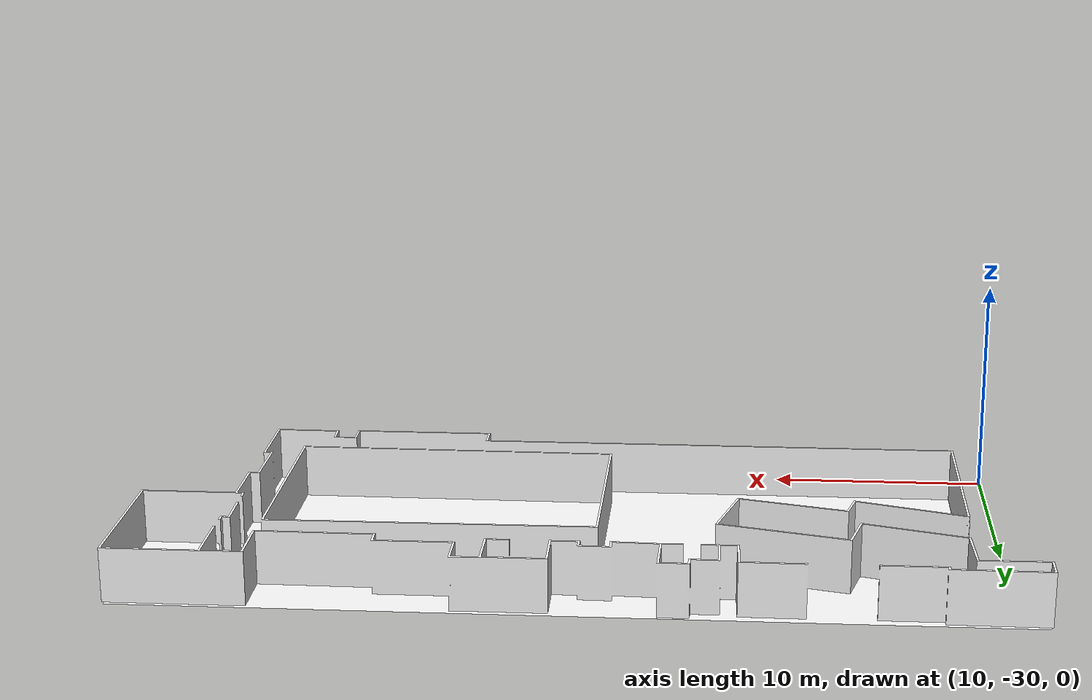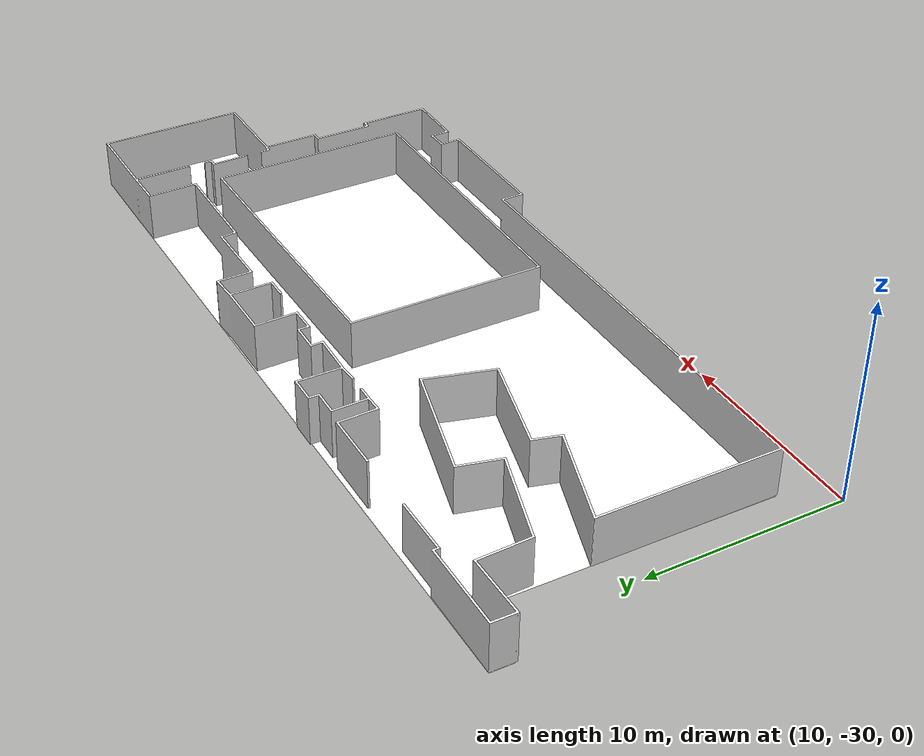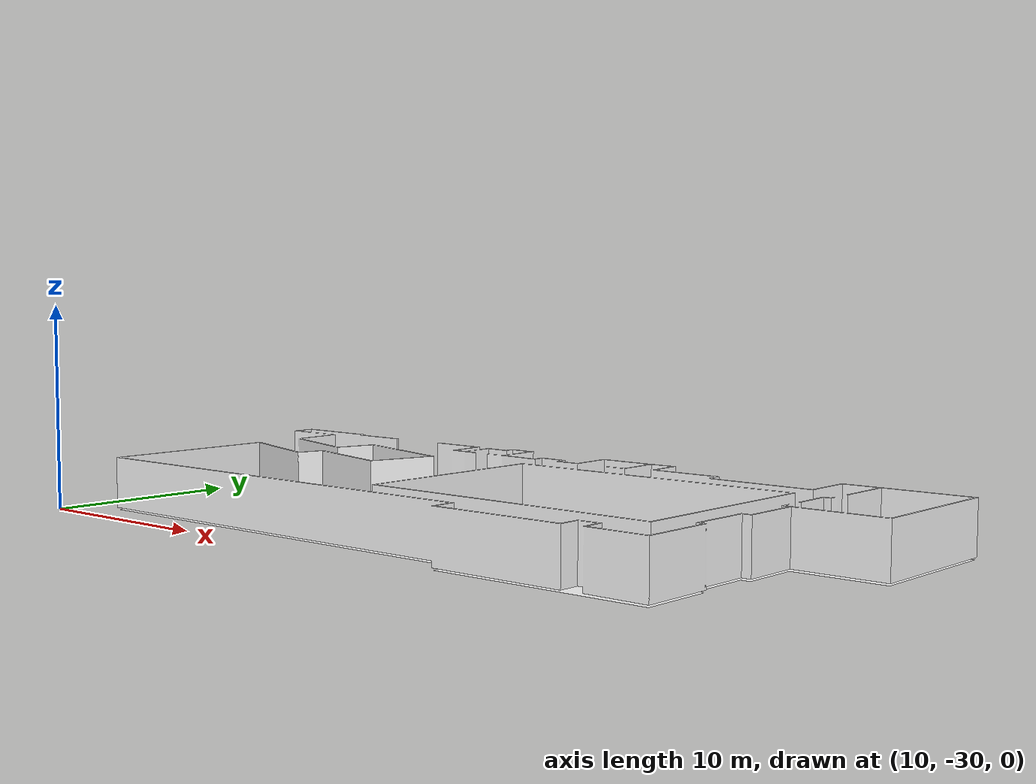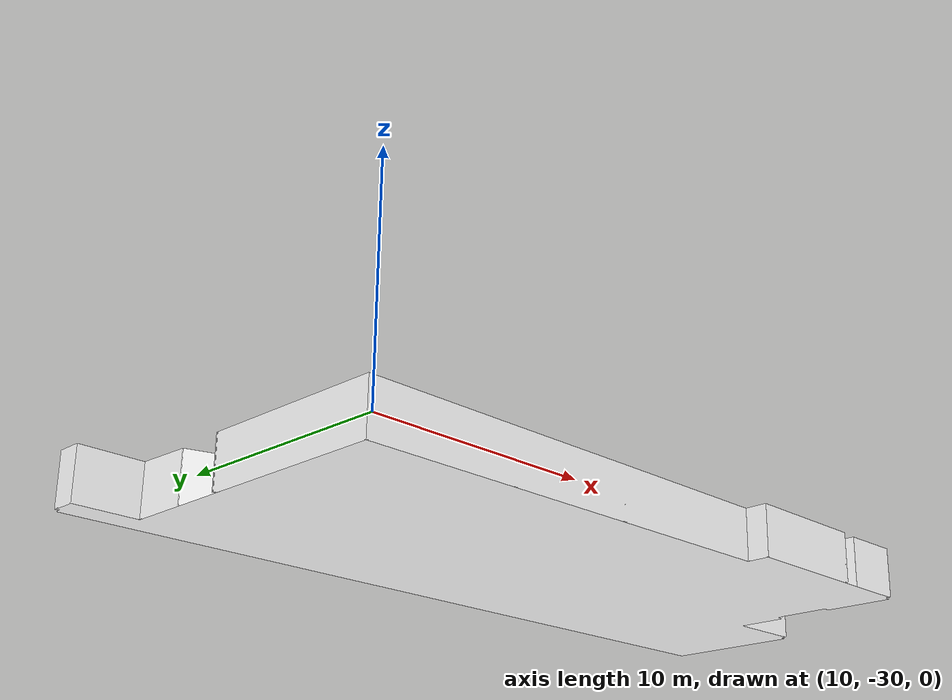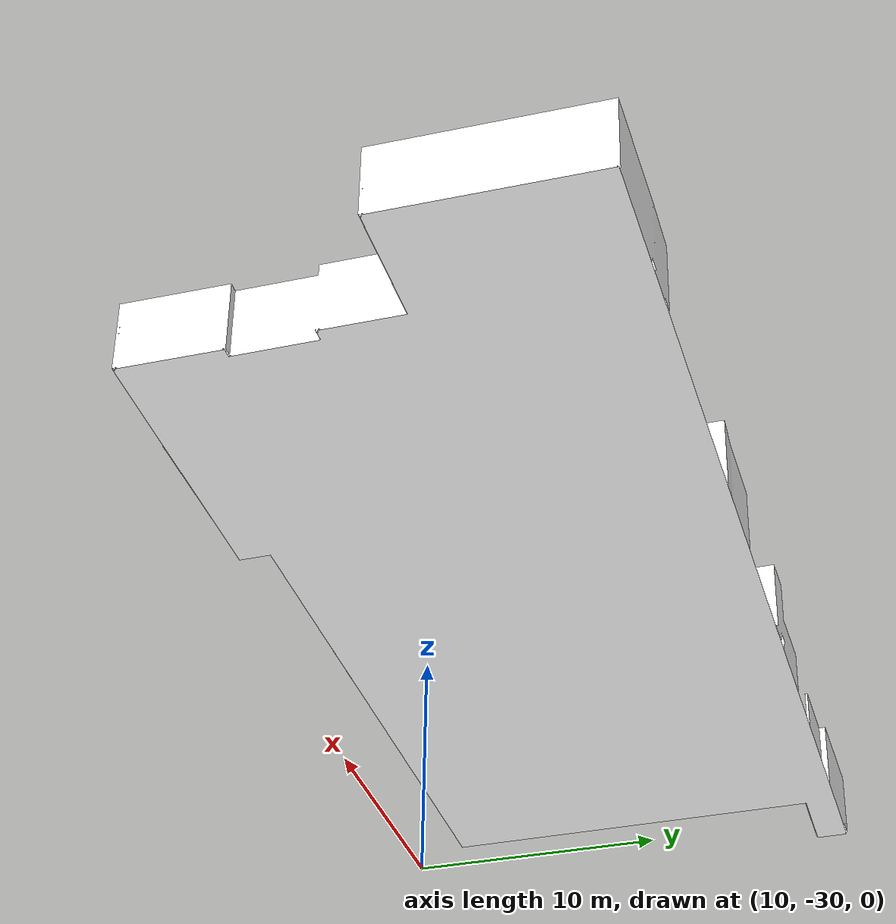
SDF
<?xml version='1.0' encoding='utf-8'?>
<sdf version="1.7">
  <model name="sam_mbc_mbc_lvl10">
    <static>true</static>
    <link name="floor_1">
      <visual name="visual">
        <geometry>
          <mesh>
            <uri>model://sam_mbc_mbc_lvl10/meshes/floor_1.obj</uri>
          </mesh>
        </geometry>
        <material>
          <diffuse>1.0 1.0 1.0</diffuse>
          <specular>0.1 0.1 0.1</specular>
          <pbr>
            <metal>
              <metalness>0.0</metalness>
              <albedo_map>model://sam_mbc_mbc_lvl10/meshes/blue_linoleum.png</albedo_map>
            </metal>
          </pbr>
          <script>
            <uri>model://sam_mbc_mbc_lvl10/meshes/</uri>
            <name>floor_1_Diffuse</name>
          </script>
        </material>
      </visual>
      <collision name="collision">
        <geometry>
          <mesh>
            <uri>model://sam_mbc_mbc_lvl10/meshes/floor_1.obj</uri>
          </mesh>
        </geometry>
        <surface>
          <contact>
            <collide_bitmask>0x01</collide_bitmask>
          </contact>
        </surface>
      </collision>
    </link>
    <link name="wall_1">
      <visual name="wall_1">
        <geometry>
          <mesh>
            <uri>model://sam_mbc_mbc_lvl10/meshes/wall_1.obj</uri>
          </mesh>
        </geometry>
        <material>
          <diffuse>1.0 1.0 1.0</diffuse>
          <specular>0.1 0.1 0.1</specular>
          <pbr>
            <metal>
              <metalness>0.0</metalness>
              <albedo_map>model://sam_mbc_mbc_lvl10/meshes/default.png</albedo_map>
            </metal>
          </pbr>
          <script>
            <uri>model://sam_mbc_mbc_lvl10/meshes/</uri>
            <name>wall_1_Diffuse</name>
          </script>
        </material>
      </visual>
      <collision name="collision">
        <geometry>
          <mesh>
            <uri>model://sam_mbc_mbc_lvl10/meshes/wall_1.obj</uri>
          </mesh>
        </geometry>
        <surface>
          <contact>
            <collide_bitmask>0x01</collide_bitmask>
          </contact>
        </surface>
      </collision>
      <pose>8.593614321993503 -28.87041093808867 0 0 0 0</pose>
    </link>
  </model>
</sdf>
